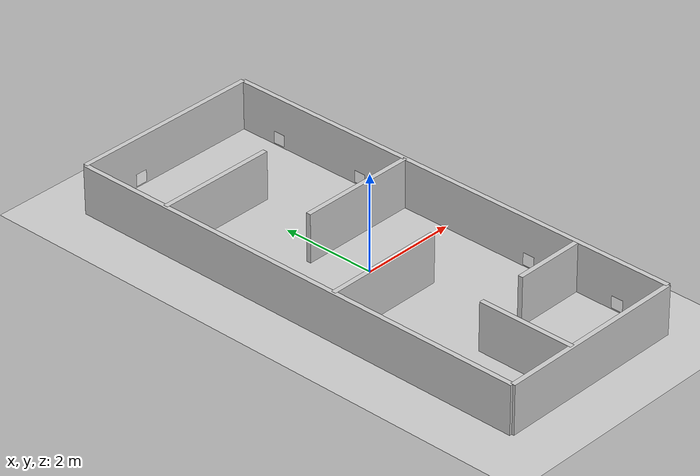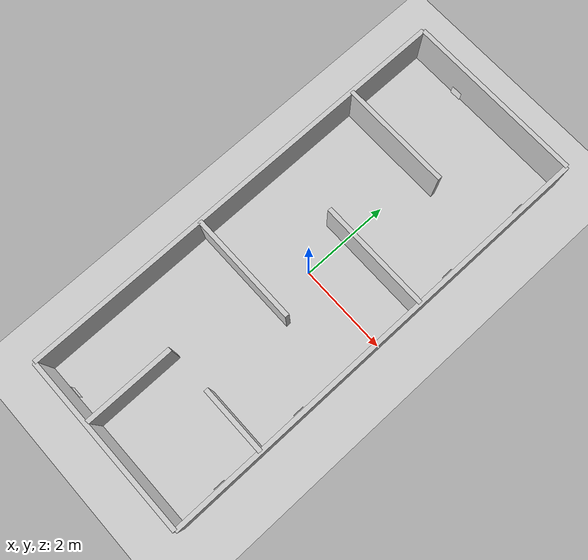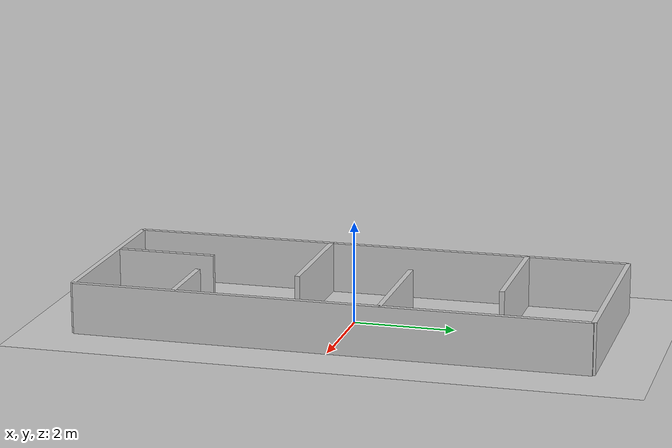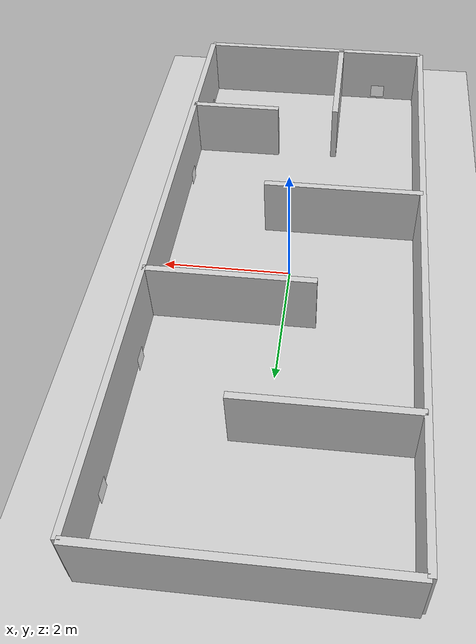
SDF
<?xml version="1.0" ?>
<sdf version="1.6">
  <world name="empty">
    <physics name="1ms" type="ignored">
      <max_step_size>0.001</max_step_size>
      <real_time_factor>1.0</real_time_factor>
    </physics>

    <light type="directional" name="sun">
      <cast_shadows>true</cast_shadows>
      <pose>0 0 10 0 0 0</pose>
      <diffuse>0.8 0.8 0.8 1</diffuse>
      <specular>0.2 0.2 0.2 1</specular>
      <attenuation>
        <range>1000</range>
        <constant>0.9</constant>
        <linear>0.01</linear>
        <quadratic>0.001</quadratic>
      </attenuation>
      <direction>-0.5 0.1 -0.9</direction>
    </light>

    <model name="ground_plane">
      <static>true</static>
      <link name="link">
        <collision name="collision">
          <geometry>
            <plane>
              <normal>0 0 1</normal>
              <size>100 100</size>
            </plane>
          </geometry>
        </collision>
        <visual name="visual">
          <geometry>
            <plane>
              <normal>0 0 1</normal>
              <size>100 100</size>
            </plane>
          </geometry>
          <material>
            <ambient>0.8 0.8 0.8 1</ambient>
            <diffuse>0.8 0.8 0.8 1</diffuse>
            <specular>0.8 0.8 0.8 1</specular>
          </material>
        </visual>
      </link>
      <plugin filename="ignition-gazebo-imu-system" name="gz::sim::systems::Imu">
      </plugin>
      <plugin filename="ignition-gazebo-sensors-system" name="gz::sim::systems::Sensors">
      </plugin>
    </model>

    <!-- Define the room -->
    <model name="room">
      <pose>0 0 0 0 0 0</pose>
      <static>true</static>

      <!-- Define the walls -->

      <link name="wall_north">
        <!-- xyz r p y -->
        <pose>2 0 0.5 0 0 0</pose>
        <visual name="visual">
          <geometry>
            <box>
              <size>0.1 10 1</size>
            </box>
          </geometry>
          <material>
            <ambient>0.8 0.8 0.8 1</ambient>
            <diffuse>0.8 0.8 0.8 1</diffuse>
          </material>
        </visual>
        <collision name="collision">
          <geometry>
            <box>
              <size>0.1 10 1</size>
            </box>
          </geometry>
        </collision>
      </link>
      <link name="wall_south">
        <pose>-2 0 0.5 0 0 0</pose>
        <visual name="visual">
          <geometry>
            <box>
              <size>0.1 10 1</size>
            </box>
          </geometry>
          <material>
            <ambient>0.8 0.8 0.8 1</ambient>
            <diffuse>0.8 0.8 0.8 1</diffuse>
          </material>
        </visual>
        <collision name="collision">
          <geometry>
            <box>
              <size>0.1 10 1</size>
            </box>
          </geometry>
        </collision>
      </link>
      <link name="wall_east">
        <pose>0 -5 0.5 0 0 0</pose>
        <visual name="visual">
          <geometry>
            <box>
              <size>4 0.1 1</size>
            </box>
          </geometry>
          <material>
            <ambient>0.8 0.8 0.8 1</ambient>
            <diffuse>0.8 0.8 0.8 1</diffuse>
          </material>
        </visual>
        <collision name="collision">
          <geometry>
            <box>
              <size>4 0.1 1</size>
            </box>
          </geometry>
        </collision>
      </link>
      <link name="wall_west">
        <pose>0 5 0.5 0 0 0</pose>
        <visual name="visual">
          <geometry>
            <box>
              <size>4 0.1 1</size>
            </box>
          </geometry>
          <material>
            <ambient>0.8 0.8 0.8 1</ambient>
            <diffuse>0.8 0.8 0.8 1</diffuse>
          </material>
        </visual>
        <collision name="collision">
          <geometry>
            <box>
              <size>4 0.1 1</size>
            </box>
          </geometry>
        </collision>
      </link>

      <!-- Internal walls -->
      <link name="wall_internal_1">
        <pose>-0.75 3 0.5 0 0 0</pose>
        <visual name="visual">
          <geometry>
            <box>
              <size>2.5 0.1 1</size>
            </box>
          </geometry>
          <material>
            <ambient>0.8 0.8 0.8 1</ambient>
            <diffuse>0.8 0.8 0.8 1</diffuse>
          </material>
        </visual>
        <collision name="collision">
          <geometry>
            <box>
              <size>2.5 0.1 1</size>
            </box>
          </geometry>
        </collision>
      </link>
      <link name="wall_internal_2">
        <pose>0.75 1 0.5 0 0 0</pose>
        <visual name="visual">
          <geometry>
            <box>
              <size>2.5 0.1 1</size>
            </box>
          </geometry>
          <material>
            <ambient>0.8 0.8 0.8 1</ambient>
            <diffuse>0.8 0.8 0.8 1</diffuse>
          </material>
        </visual>
        <collision name="collision">
          <geometry>
            <box>
              <size>2.5 0.1 1</size>
            </box>
          </geometry>
        </collision>
      </link>
      <link name="wall_internal_3">
        <pose>-0.75 -1 0.5 0 0 0</pose>
        <visual name="visual">
          <geometry>
            <box>
              <size>2.5 0.1 1</size>
            </box>
          </geometry>
          <material>
            <ambient>0.8 0.8 0.8 1</ambient>
            <diffuse>0.8 0.8 0.8 1</diffuse>
          </material>
        </visual>
        <collision name="collision">
          <geometry>
            <box>
              <size>2.5 0.1 1</size>
            </box>
          </geometry>
        </collision>
      </link>
      <link name="wall_internal_4">
        <pose>1.25 -3 0.5 0 0 0</pose>
        <visual name="visual">
          <geometry>
            <box>
              <size>1.5 0.1 1</size>
            </box>
          </geometry>
          <material>
            <ambient>0.8 0.8 0.8 1</ambient>
            <diffuse>0.8 0.8 0.8 1</diffuse>
          </material>
        </visual>
        <collision name="collision">
          <geometry>
            <box>
              <size>1.5 0.1 1</size>
            </box>
          </geometry>
        </collision>
      </link>
      <link name="wall_internal_5">
        <pose>-0.5 -4 0.5 0 0 0</pose>
        <visual name="visual">
          <geometry>
            <box>
              <size>0.1 2 1</size>
            </box>
          </geometry>
          <material>
            <ambient>0.8 0.8 0.8 1</ambient>
            <diffuse>0.8 0.8 0.8 1</diffuse>
          </material>
        </visual>
        <collision name="collision">
          <geometry>
            <box>
              <size>0.1 2 1</size>
            </box>
          </geometry>
        </collision>
      </link>

      <!-- Image textures -->
      <link name="nonflammablegas">
        <pose>1.89 4 0.2 1.5707 0 -1.5707</pose>
        <visual name="visual">
          <geometry>
            <plane>
              <normal>0 0 1</normal>
              <size>0.25 0.25</size>
            </plane>
          </geometry>
        <material>
          <diffuse>1 1 1 1</diffuse>
          <specular>0.4 0.4 0.4 1</specular>
          <pbr>
            <metal>
              <albedo_map>file:///home/user/aiil_workspace/humble_workspace/src/aiil_gazebo/worlds/models/nonflammablegas.png</albedo_map>
            </metal>
          </pbr>
        </material>
        </visual>
      </link>
      <link name="explosives">
        <pose>1.89 2 0.2 1.5707 0 -1.5707</pose>
        <visual name="visual">
          <geometry>
            <plane>
              <normal>0 0 1</normal>
              <size>0.25 0.25</size>
            </plane>
          </geometry>
        <material>
          <diffuse>1 1 1 1</diffuse>
          <specular>0.4 0.4 0.4 1</specular>
          <pbr>
            <metal>
              <albedo_map>file:///home/user/aiil_workspace/humble_workspace/src/aiil_gazebo/worlds/models/explosives.png</albedo_map>
            </metal>
          </pbr>
        </material>
        </visual>
      </link>
      <link name="corrosive">
        <pose>1.89 -2 0.2 1.5707 0 -1.5707</pose>
        <visual name="visual">
          <geometry>
            <plane>
              <normal>0 0 1</normal>
              <size>0.25 0.25</size>
            </plane>
          </geometry>
        <material>
          <diffuse>1 1 1 1</diffuse>
          <specular>0.4 0.4 0.4 1</specular>
          <pbr>
            <metal>
              <albedo_map>file:///home/user/aiil_workspace/humble_workspace/src/aiil_gazebo/worlds/models/corrosive.png</albedo_map>
            </metal>
          </pbr>
        </material>
        </visual>
      </link>
      <link name="dangerouswhenwet">
        <pose>1.89 -4 0.2 1.5707 0 -1.5707</pose>
        <visual name="visual">
          <geometry>
            <plane>
              <normal>0 0 1</normal>
              <size>0.25 0.25</size>
            </plane>
          </geometry>
        <material>
          <diffuse>1 1 1 1</diffuse>
          <specular>0.4 0.4 0.4 1</specular>
          <pbr>
            <metal>
              <albedo_map>file:///home/user/aiil_workspace/humble_workspace/src/aiil_gazebo/worlds/models/dangerouswhenwet.png</albedo_map>
            </metal>
          </pbr>
        </material>
        </visual>
      </link>
      <link name="flammablegas">
        <pose>-1.25 -4.89 0.2 1.5707 0 3.1416</pose>
        <visual name="visual">
          <geometry>
            <plane>
              <normal>0 0 1</normal>
              <size>0.25 0.25</size>
            </plane>
          </geometry>
        <material>
          <diffuse>1 1 1 1</diffuse>
          <specular>0.4 0.4 0.4 1</specular>
          <pbr>
            <metal>
              <albedo_map>file:///home/user/aiil_workspace/humble_workspace/src/aiil_gazebo/worlds/models/flammablegas.png</albedo_map>
            </metal>
          </pbr>
        </material>
        </visual>
      </link>

      <link name="flammablesolid">
        <pose>-0.75 4.89 0.2 1.5707 0 0</pose>
        <visual name="visual">
          <geometry>
            <plane>
              <normal>0 0 1</normal>
              <size>0.25 0.25</size>
            </plane>
          </geometry>
        <material>
          <diffuse>1 1 1 1</diffuse>
          <specular>0.4 0.4 0.4 1</specular>
          <pbr>
            <metal>
              <albedo_map>file:///home/user/aiil_workspace/humble_workspace/src/aiil_gazebo/worlds/models/flammablesolid.png</albedo_map>
            </metal>
          </pbr>
        </material>
        </visual>
      </link>

    </model>

  </world>
</sdf>
